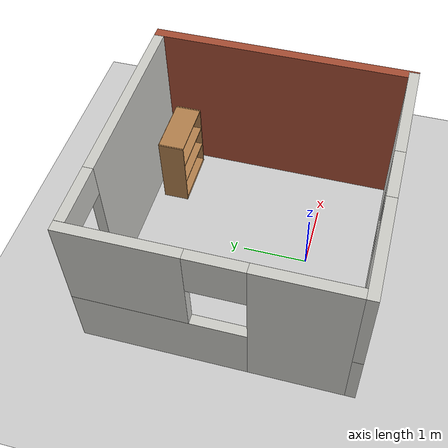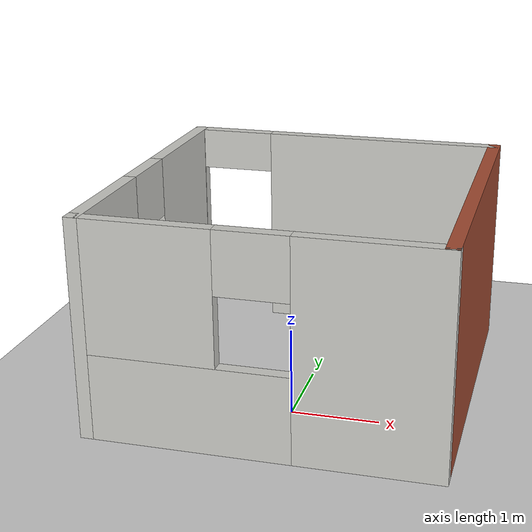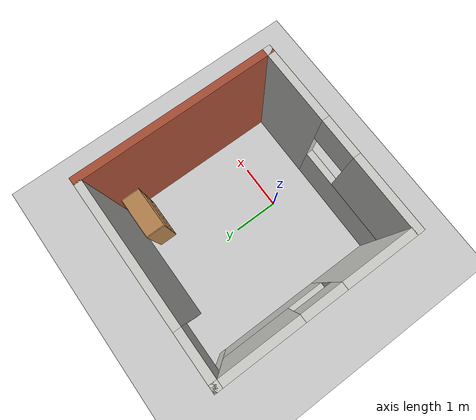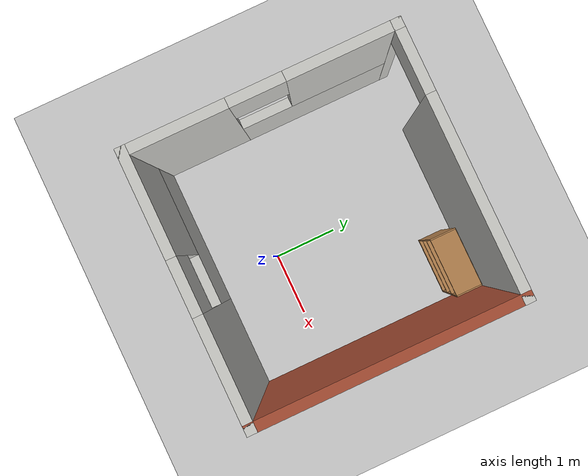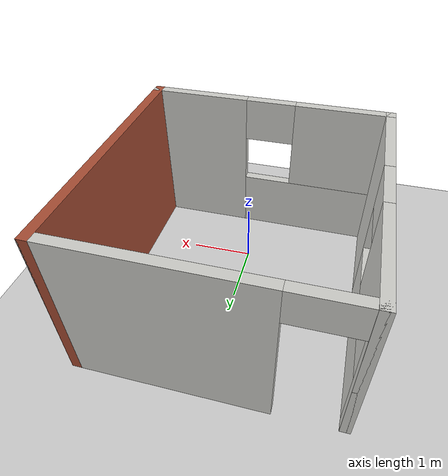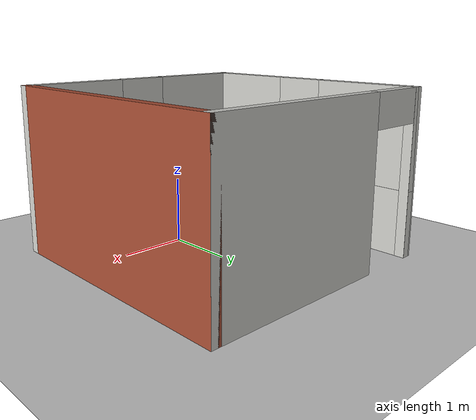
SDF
<sdf version="1.6">
 <world name="default">
  <light name="sun" type="directional">
   <pose>0 0 10 0 -0 0</pose>
   <diffuse>0.8 0.8 0.8 1</diffuse>
   <specular>0.2 0.2 0.2 1</specular>
   <attenuation>
    <range>1000</range>
    <constant>0.9</constant>
    <linear>0.01</linear>
    <quadratic>0.001</quadratic>
   </attenuation>
   <direction>-0.5 0.1 -0.9</direction>
  </light>
  <model name="ground_plane">
   <static>1</static>
   <link name="link">
    <collision name="collision">
     <geometry><plane><normal>0 0 1</normal><size>100 100</size></plane></geometry>
     <surface>
      <contact><collide_bitmask>65535</collide_bitmask></contact>
      <friction><ode><mu>100</mu><mu2>50</mu2></ode></friction>
     </surface>
    </collision>
    <visual name="visual">
     <cast_shadows>0</cast_shadows>
     <geometry><plane><normal>0 0 1</normal><size>100 100</size></plane></geometry>
     <material>
      <script><uri>file://media/materials/scripts/gazebo.material</uri><name>Gazebo/Grey</name></script>
     </material>
    </visual>
   </link>
  </model>
  <gravity>0 0 -9.8</gravity>
  <magnetic_field>6e-06 2.3e-05 -4.2e-05</magnetic_field>
  <atmosphere type="adiabatic"/>
  <physics name="default_physics" default="0" type="ode">
   <max_step_size>0.001</max_step_size>
   <real_time_factor>1</real_time_factor>
   <real_time_update_rate>1000</real_time_update_rate>
  </physics>
  <scene><ambient>0.4 0.4 0.4 1</ambient><background>0.7 0.7 0.7 1</background><shadows>1</shadows></scene>
  <audio><device>default</device></audio>
  <spherical_coordinates>
   <surface_model>EARTH_WGS84</surface_model>
   <latitude_deg>0</latitude_deg>
   <longitude_deg>0</longitude_deg>
   <elevation>0</elevation>
   <heading_deg>0</heading_deg>
  </spherical_coordinates>
  <model name="house_2">
   <pose>-0.067579 0.867392 0 0 -0 0</pose>
   <link name="Wall_0">
    <pose>0 1.925 0 0 -0 0</pose>
    <visual name="Wall_0_Visual_0">
     <pose>-1.91388 0 1.25 0 -0 0</pose>
     <geometry><box><size>0.152247 0.15 2.5</size></box></geometry>
     <material>
      <script><uri>file://media/materials/scripts/gazebo.material</uri><name>Gazebo/CeilingTiled</name></script>
      <ambient>1 1 1 1</ambient>
     </material>
     <meta><layer>0</layer></meta>
    </visual>
    <collision name="Wall_0_Collision_0">
     <geometry><box><size>0.152247 0.15 2.5</size></box></geometry>
     <pose>-1.91388 0 1.25 0 -0 0</pose>
    </collision>
    <visual name="Wall_0_Visual_1">
     <pose>0.526123 0 1.25 0 -0 0</pose>
     <geometry><box><size>2.92775 0.15 2.5</size></box></geometry>
     <material>
      <script><uri>file://media/materials/scripts/gazebo.material</uri><name>Gazebo/CeilingTiled</name></script>
      <ambient>1 1 1 1</ambient>
     </material>
     <meta><layer>0</layer></meta>
    </visual>
    <collision name="Wall_0_Collision_1">
     <geometry><box><size>2.92775 0.15 2.5</size></box></geometry>
     <pose>0.526123 0 1.25 0 -0 0</pose>
    </collision>
    <visual name="Wall_0_Visual_2">
     <pose>-1.38775 0 2.25 0 -0 0</pose>
     <geometry><box><size>0.9 0.15 0.5</size></box></geometry>
     <material>
      <script><uri>file://media/materials/scripts/gazebo.material</uri><name>Gazebo/CeilingTiled</name></script>
      <ambient>1 1 1 1</ambient>
     </material>
     <meta><layer>0</layer></meta>
    </visual>
    <collision name="Wall_0_Collision_2">
     <geometry><box><size>0.9 0.15 0.5</size></box></geometry>
     <pose>-1.38775 0 2.25 0 -0 0</pose>
    </collision>
   </link>
   <link name="Wall_1">
    <collision name="Wall_1_Collision">
     <geometry><box><size>4 0.15 2.5</size></box></geometry>
     <pose>0 0 1.25 0 -0 0</pose>
    </collision>
    <visual name="Wall_1_Visual">
     <pose>0 0 1.25 0 -0 0</pose>
     <geometry><box><size>4 0.15 2.5</size></box></geometry>
     <material>
      <script><uri>file://media/materials/scripts/gazebo.material</uri><name>Gazebo/Bricks</name></script>
      <ambient>1 1 1 1</ambient>
     </material>
     <meta><layer>0</layer></meta>
    </visual>
    <pose>1.915 -0 0 0 -0 -1.5708</pose>
   </link>
   <link name="Wall_2">
    <pose>0 -1.925 0 0 -0 3.14159</pose>
    <visual name="Wall_2_Visual_0">
     <pose>-1.17759 0 1.25 0 -0 0</pose>
     <geometry><box><size>1.62482 0.15 2.5</size></box></geometry>
     <material>
      <script><uri>file://media/materials/scripts/gazebo.material</uri><name>Gazebo/CeilingTiled</name></script>
      <ambient>1 0.764706 0.305882 1</ambient>
     </material>
     <meta><layer>0</layer></meta>
    </visual>
    <collision name="Wall_2_Collision_0">
     <geometry><box><size>1.62482 0.15 2.5</size></box></geometry>
     <pose>-1.17759 0 1.25 0 -0 0</pose>
    </collision>
    <visual name="Wall_2_Visual_1">
     <pose>0.812409 0 0.5 0 -0 0</pose>
     <geometry><box><size>2.35518 0.15 1</size></box></geometry>
     <material>
      <script><uri>file://media/materials/scripts/gazebo.material</uri><name>Gazebo/CeilingTiled</name></script>
      <ambient>1 0.764706 0.305882 1</ambient>
     </material>
     <meta><layer>0</layer></meta>
    </visual>
    <collision name="Wall_2_Collision_1">
     <geometry><box><size>2.35518 0.15 1</size></box></geometry>
     <pose>0.812409 0 0.5 0 -0 0</pose>
    </collision>
    <visual name="Wall_2_Visual_2">
     <pose>1.21241 0 1.75 0 -0 0</pose>
     <geometry><box><size>1.55518 0.15 1.5</size></box></geometry>
     <material>
      <script><uri>file://media/materials/scripts/gazebo.material</uri><name>Gazebo/CeilingTiled</name></script>
      <ambient>1 0.764706 0.305882 1</ambient>
     </material>
     <meta><layer>0</layer></meta>
    </visual>
    <collision name="Wall_2_Collision_2">
     <geometry><box><size>1.55518 0.15 1.5</size></box></geometry>
     <pose>1.21241 0 1.75 0 -0 0</pose>
    </collision>
    <visual name="Wall_2_Visual_3">
     <pose>0.034818 0 2.15 0 -0 0</pose>
     <geometry><box><size>0.8 0.15 0.7</size></box></geometry>
     <material>
      <script><uri>file://media/materials/scripts/gazebo.material</uri><name>Gazebo/CeilingTiled</name></script>
      <ambient>1 0.764706 0.305882 1</ambient>
     </material>
     <meta><layer>0</layer></meta>
    </visual>
    <collision name="Wall_2_Collision_3">
     <geometry><box><size>0.8 0.15 0.7</size></box></geometry>
     <pose>0.034818 0 2.15 0 -0 0</pose>
    </collision>
   </link>
   <link name="Wall_3">
    <pose>-1.915 -0 0 0 -0 1.5708</pose>
    <visual name="Wall_3_Visual_0">
     <pose>-1.2325 0 1.25 0 -0 0</pose>
     <geometry><box><size>1.535 0.15 2.5</size></box></geometry>
     <material>
      <script><uri>file://media/materials/scripts/gazebo.material</uri><name>Gazebo/CeilingTiled</name></script>
      <ambient>0.760784 0.662745 0.627451 1</ambient>
     </material>
     <meta><layer>0</layer></meta>
    </visual>
    <collision name="Wall_3_Collision_0">
     <geometry><box><size>1.535 0.15 2.5</size></box></geometry>
     <pose>-1.2325 0 1.25 0 -0 0</pose>
    </collision>
    <visual name="Wall_3_Visual_1">
     <pose>0.7675 0 0.5 0 -0 0</pose>
     <geometry><box><size>2.465 0.15 1</size></box></geometry>
     <material>
      <script><uri>file://media/materials/scripts/gazebo.material</uri><name>Gazebo/CeilingTiled</name></script>
      <ambient>0.760784 0.662745 0.627451 1</ambient>
     </material>
     <meta><layer>0</layer></meta>
    </visual>
    <collision name="Wall_3_Collision_1">
     <geometry><box><size>2.465 0.15 1</size></box></geometry>
     <pose>0.7675 0 0.5 0 -0 0</pose>
    </collision>
    <visual name="Wall_3_Visual_2">
     <pose>1.1675 0 1.75 0 -0 0</pose>
     <geometry><box><size>1.665 0.15 1.5</size></box></geometry>
     <material>
      <script><uri>file://media/materials/scripts/gazebo.material</uri><name>Gazebo/CeilingTiled</name></script>
      <ambient>0.760784 0.662745 0.627451 1</ambient>
     </material>
     <meta><layer>0</layer></meta>
    </visual>
    <collision name="Wall_3_Collision_2">
     <geometry><box><size>1.665 0.15 1.5</size></box></geometry>
     <pose>1.1675 0 1.75 0 -0 0</pose>
    </collision>
    <visual name="Wall_3_Visual_3">
     <pose>-0.065 0 2.15 0 -0 0</pose>
     <geometry><box><size>0.8 0.15 0.7</size></box></geometry>
     <material>
      <script><uri>file://media/materials/scripts/gazebo.material</uri><name>Gazebo/CeilingTiled</name></script>
      <ambient>0.760784 0.662745 0.627451 1</ambient>
     </material>
     <meta><layer>0</layer></meta>
    </visual>
    <collision name="Wall_3_Collision_3">
     <geometry><box><size>0.8 0.15 0.7</size></box></geometry>
     <pose>-0.065 0 2.15 0 -0 0</pose>
    </collision>
   </link>
   <static>1</static>
  </model>
  <model name="bookshelf">
   <static>1</static>
   <link name="link">
    <inertial><mass>1</mass></inertial>
    <collision name="back">
     <pose>0 0.005 0.6 0 -0 0</pose>
     <geometry><box><size>0.9 0.01 1.2</size></box></geometry>
    </collision>
    <visual name="visual1">
     <pose>0 0.005 0.6 0 -0 0</pose>
     <geometry><box><size>0.9 0.01 1.2</size></box></geometry>
     <material>
      <script><uri>file://media/materials/scripts/gazebo.material</uri><name>Gazebo/Wood</name></script>
     </material>
    </visual>
    <collision name="left_side">
     <pose>0.45 -0.195 0.6 0 -0 0</pose>
     <geometry><box><size>0.02 0.4 1.2</size></box></geometry>
    </collision>
    <visual name="visual2">
     <pose>0.45 -0.195 0.6 0 -0 0</pose>
     <geometry><box><size>0.02 0.4 1.2</size></box></geometry>
     <material>
      <script><uri>file://media/materials/scripts/gazebo.material</uri><name>Gazebo/Wood</name></script>
     </material>
    </visual>
    <collision name="right_side">
     <pose>-0.45 -0.195 0.6 0 -0 0</pose>
     <geometry><box><size>0.02 0.4 1.2</size></box></geometry>
    </collision>
    <visual name="visual3">
     <pose>-0.45 -0.195 0.6 0 -0 0</pose>
     <geometry><box><size>0.02 0.4 1.2</size></box></geometry>
     <material>
      <script><uri>file://media/materials/scripts/gazebo.material</uri><name>Gazebo/Wood</name></script>
     </material>
    </visual>
    <collision name="bottom">
     <pose>0 -0.195 0.03 0 -0 0</pose>
     <geometry><box><size>0.88 0.4 0.06</size></box></geometry>
    </collision>
    <visual name="visual4">
     <pose>0 -0.195 0.03 0 -0 0</pose>
     <geometry><box><size>0.88 0.4 0.06</size></box></geometry>
     <material>
      <script><uri>file://media/materials/scripts/gazebo.material</uri><name>Gazebo/Wood</name></script>
     </material>
    </visual>
    <collision name="top">
     <pose>0 -0.195 1.19 0 -0 0</pose>
     <geometry><box><size>0.88 0.4 0.02</size></box></geometry>
    </collision>
    <visual name="visual5">
     <pose>0 -0.195 1.19 0 -0 0</pose>
     <geometry><box><size>0.88 0.4 0.02</size></box></geometry>
     <material>
      <script><uri>file://media/materials/scripts/gazebo.material</uri><name>Gazebo/Wood</name></script>
     </material>
    </visual>
    <collision name="low_shelf">
     <pose>0 -0.195 0.43 0 -0 0</pose>
     <geometry><box><size>0.88 0.4 0.02</size></box></geometry>
    </collision>
    <visual name="visual6">
     <pose>0 -0.195 0.43 0 -0 0</pose>
     <geometry><box><size>0.88 0.4 0.02</size></box></geometry>
     <material>
      <script><uri>file://media/materials/scripts/gazebo.material</uri><name>Gazebo/Wood</name></script>
     </material>
    </visual>
    <collision name="high_shelf">
     <pose>0 -0.195 0.8 0 -0 0</pose>
     <geometry><box><size>0.88 0.4 0.02</size></box></geometry>
    </collision>
    <visual name="visual7">
     <pose>0 -0.195 0.8 0 -0 0</pose>
     <geometry><box><size>0.88 0.4 0.02</size></box></geometry>
     <material>
      <script><uri>file://media/materials/scripts/gazebo.material</uri><name>Gazebo/Wood</name></script>
     </material>
    </visual>
   </link>
   <pose>1.19894 2.57227 0 0 -0 0</pose>
  </model>
 </world>
</sdf>
